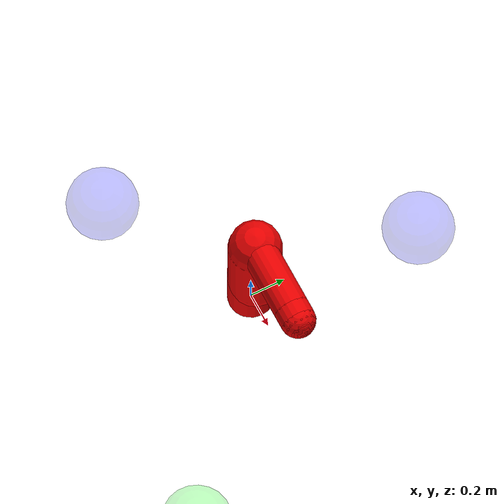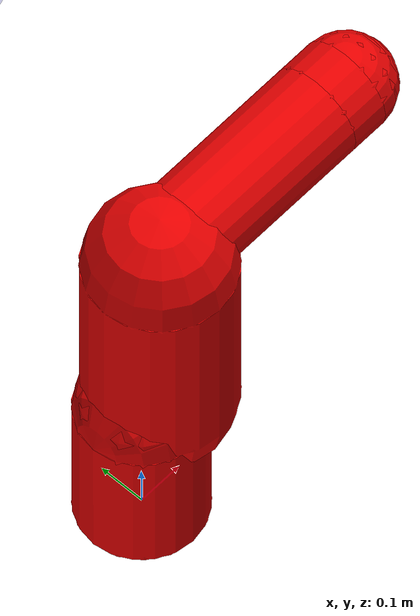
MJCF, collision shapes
<?xml version="1.0" encoding="utf-8"?>
<mujoco>
	<size njmax="3000" nconmax="1000"></size>
	<compiler meshdir="assets" autolimits="true"></compiler>
	<option gravity="0 0 0" timestep="0.002"></option>
	<default>
		<joint limited="false" damping="1000" range="-180 180"></joint>
		<geom condim="6" size="0.032" type="capsule" density="0.01"></geom>
		<motor ctrllimited="true" ctrlrange="-1.0 1.0" gear="2500"></motor>
		<site size="0.02" type="sphere" rgba="0 0 1 1"></site>
		<default class="lrmate">
			<material specular="0.5" shininess="0.25"></material>
			<joint axis="0 0 1"></joint>
			<general gaintype="fixed" biastype="affine" gainprm="2000" biasprm="0 -2000 -200"></general>
			<default class="visual">
				<geom type="mesh" contype="0" conaffinity="0" group="2"></geom>
			</default>
			<default class="collision">
				<geom group="3" material="color_fanuc_red"></geom>
			</default>
			<site size="0.001" rgba="1 0 0 1" group="4"></site>
		</default>
	</default>
	<asset>
		<material name="MatPlane" reflectance="0.1" shininess="0.1" specular="0.1" texrepeat="10 10" texture="texplane"></material>
		<material class="lrmate" name="color_fanuc_yellow" rgba="0.96 0.76 0.13 1.0"></material>
		<material class="lrmate" name="color_fanuc_white" rgba="0.86 0.85 0.81 1.0"></material>
		<material class="lrmate" name="color_fanuc_grey" rgba="0.34 0.35 0.36 0.5"></material>
		<material class="lrmate" name="color_fanuc_black" rgba="0.15 0.15 0.15 1.0"></material>
		<material class="lrmate" name="color_fanuc_red" rgba="0.9 0.0 0.0 0.2"></material>
		<mesh file="/home/yifan/guard/guard_new/safe_rl_envs/safe_rl_envs/xmls/fanuc_lr_mate/assets/link_0.stl"></mesh>
		<mesh file="/home/yifan/guard/guard_new/safe_rl_envs/safe_rl_envs/xmls/fanuc_lr_mate/assets/link_1.stl"></mesh>
		<mesh file="/home/yifan/guard/guard_new/safe_rl_envs/safe_rl_envs/xmls/fanuc_lr_mate/assets/link_2.stl"></mesh>
		<mesh file="/home/yifan/guard/guard_new/safe_rl_envs/safe_rl_envs/xmls/fanuc_lr_mate/assets/link_3.stl"></mesh>
		<mesh file="/home/yifan/guard/guard_new/safe_rl_envs/safe_rl_envs/xmls/fanuc_lr_mate/assets/link_4.stl"></mesh>
		<mesh file="/home/yifan/guard/guard_new/safe_rl_envs/safe_rl_envs/xmls/fanuc_lr_mate/assets/link_5.stl"></mesh>
		<mesh file="/home/yifan/guard/guard_new/safe_rl_envs/safe_rl_envs/xmls/fanuc_lr_mate/assets/link_6.stl"></mesh>
		<texture name="texplane" builtin="checker" height="100" width="100" rgb1="0.7 0.7 0.7" rgb2="0.8 0.8 0.8" type="2d"></texture>
		<texture type="skybox" builtin="gradient" rgb1="0.527 0.582 0.906" rgb2="0.1 0.1 0.35" width="800" height="800" markrgb="1 1 1" mark="random" random="0.001"></texture>
	</asset>
	<worldbody>
		<geom name="floor" size="3.5 3.5 0.1" type="plane" condim="6" rgba="1 1 1 1" material="MatPlane"></geom>
		<camera name="fixednear" pos="0 -2 2" zaxis="0 -1 1"></camera>
		<camera name="fixedfar" pos="0 -5 5" zaxis="0 -1 1"></camera>
		<body name="robot" pos="4.857521260602153e-10 -2.8323042920187505e-11 0.0" quat="1.0 0.0 0.0 0.0">
			<camera name="vision" pos="0 0 .5" xyaxes="0 -1 0 .4 0 1" fovy="90"></camera>
			<camera name="track" mode="track" pos="0.0 -2.0 2" xyaxes="1.0 -0.0 0 0.0 1.0 1"></camera>
			<site name="robot" pos="0 0 0" rgba="1 0 0 0"></site>
			<body name="link_1" pos="0.0 0.0 0.0">
				<geom class="collision" fromto="0.0 0.0 0.0 0.0 0.0 0.33" size="0.13" name="link_1"></geom>
				<geom class="visual" material="color_fanuc_black" mesh="link_0" name="link_1_visual"></geom>
				<site name="center_link_1" pos="0 0 0.165"></site>
				<body name="link_2" pos="0.0 0.0 0.330">
					<joint type="hinge" axis="0 0 1" name="joint_1"></joint>
					<geom class="collision" fromto="0.0 0.0 0.0 0.050 0.0 0.0" size="0.13" name="link_2"></geom>
					<geom class="visual" material="color_fanuc_yellow" mesh="link_1" name="link_2_visual"></geom>
					<site name="center_link_2" pos="0.025 0.0 0.0"></site>
					<body name="link_3" pos="0.050 0 0">
						<joint type="hinge" axis="0 1 0" name="joint_2"></joint>
						<geom class="collision" fromto="0.0 0.0 0.0 0 0 0.440" size="0.15" name="link_3"></geom>
						<geom class="visual" material="color_fanuc_yellow" mesh="link_2" name="link_3_visual"></geom>
						<site name="center_link_3" pos="0.0 0.0 0.220"></site>
						<body name="link_4" pos="0 0 0.440">
							<joint type="hinge" axis="0 -1 0" name="joint_3"></joint>
							<geom class="collision" fromto="0.0 0.0 0.0 0 0 0.035" size="0.1" name="link_4"></geom>
							<geom class="visual" material="color_fanuc_yellow" mesh="link_3" name="link_4_visual"></geom>
							<site name="center_link_4" pos="0.0 0.0 00175"></site>
							<body name="link_5" pos="0 0 0.035">
								<joint type="hinge" axis="-1 0 0" name="joint_4"></joint>
								<geom class="collision" fromto="0.0 0.0 0.0 0.420 0.0 0.0" size="0.1" name="link_5"></geom>
								<geom class="visual" material="color_fanuc_yellow" mesh="link_4" name="link_5_visual"></geom>
								<site name="center_link_5" pos="0.21 0.0 0.0"></site>
								<body name="link_6" pos="0.420 0 0">
									<joint type="hinge" axis="0 -1 0" name="joint_5"></joint>
									<geom class="collision" fromto="0.0 0.0 0.0 0.080 0 0" size="0.1" name="link_6"></geom>
									<geom class="visual" material="color_fanuc_yellow" mesh="link_5" name="link_6_visual"></geom>
									<site name="center_link_6" pos="0.04 0.0 0.0"></site>
									<body name="link_7" pos="0.080 0 0">
										<joint type="hinge" axis="-1 0 0" name="joint_6"></joint>
										<geom class="collision" pos="0.0 0.0 0.0" type="sphere" size="0.1" name="link_7"></geom>
										<geom class="visual" material="color_fanuc_black" mesh="link_6" name="link_7_visual"></geom>
										<site name="center_link_7" pos="0.0 0.0 0.0"></site>
									</body>
								</body>
							</body>
						</body>
					</body>
				</body>
			</body>
		</body>
		<body name="goal" pos="1.2780582201702666 -0.9958254602558928 0.6280613505767182" quat="-0.4982693776087498 0.0 0.0 0.8670222761483058">
			<geom name="goal" type="sphere" size="0.2" rgba="0.0 1.0 0.0 0.25" group="0" contype="0" conaffinity="0"></geom>
		</body>
		<body name="hazard3D0" pos="-0.6422157019872433 -0.5727822450461211 0.5561467167910048" quat="0.7704107303737541 0.0 0.0 0.6375478856721107">
			<geom name="hazard3D0" type="sphere" size="0.2" rgba="0.0 0.0 1.0 0.25" group="3" contype="0" conaffinity="0"></geom>
		</body>
		<body name="hazard3D1" pos="0.29198841333913883 0.8701727770226397 0.599401811836316" quat="-0.9679939595952471 0.0 0.0 0.2509734929969996">
			<geom name="hazard3D1" type="sphere" size="0.2" rgba="0.0 0.0 1.0 0.25" group="3" contype="0" conaffinity="0"></geom>
		</body>
		<light cutoff="100" diffuse="1 1 1" dir="0 0 -1" directional="true" exponent="1" pos="0 0 0.5" specular="0 0 0" castshadow="false"></light>
	</worldbody>
	<sensor>
		<touch site="center_link_7" name="touch_end_effector"></touch>
		<jointpos joint="joint_1" name="jointpos_joint_1"></jointpos>
		<jointpos joint="joint_2" name="jointpos_joint_2"></jointpos>
		<jointpos joint="joint_3" name="jointpos_joint_3"></jointpos>
		<jointpos joint="joint_4" name="jointpos_joint_4"></jointpos>
		<jointpos joint="joint_5" name="jointpos_joint_5"></jointpos>
		<jointpos joint="joint_6" name="jointpos_joint_6"></jointpos>
		<jointvel joint="joint_1" name="jointvel_joint_1"></jointvel>
		<jointvel joint="joint_2" name="jointvel_joint_2"></jointvel>
		<jointvel joint="joint_3" name="jointvel_joint_3"></jointvel>
		<jointvel joint="joint_4" name="jointvel_joint_4"></jointvel>
		<jointvel joint="joint_5" name="jointvel_joint_5"></jointvel>
		<jointvel joint="joint_6" name="jointvel_joint_6"></jointvel>
		<accelerometer site="center_link_1" name="accelerometer_link_1"></accelerometer>
		<accelerometer site="center_link_2" name="accelerometer_link_2"></accelerometer>
		<accelerometer site="center_link_3" name="accelerometer_link_3"></accelerometer>
		<accelerometer site="center_link_4" name="accelerometer_link_4"></accelerometer>
		<accelerometer site="center_link_5" name="accelerometer_link_5"></accelerometer>
		<accelerometer site="center_link_6" name="accelerometer_link_6"></accelerometer>
		<accelerometer site="center_link_7" name="accelerometer_link_7"></accelerometer>
		<velocimeter site="center_link_1" name="velocimeter_link_1"></velocimeter>
		<velocimeter site="center_link_2" name="velocimeter_link_2"></velocimeter>
		<velocimeter site="center_link_3" name="velocimeter_link_3"></velocimeter>
		<velocimeter site="center_link_4" name="velocimeter_link_4"></velocimeter>
		<velocimeter site="center_link_5" name="velocimeter_link_5"></velocimeter>
		<velocimeter site="center_link_6" name="velocimeter_link_6"></velocimeter>
		<velocimeter site="center_link_7" name="velocimeter_link_7"></velocimeter>
		<gyro site="center_link_1" name="gyro_link_1"></gyro>
		<gyro site="center_link_2" name="gyro_link_2"></gyro>
		<gyro site="center_link_3" name="gyro_link_3"></gyro>
		<gyro site="center_link_4" name="gyro_link_4"></gyro>
		<gyro site="center_link_5" name="gyro_link_5"></gyro>
		<gyro site="center_link_6" name="gyro_link_6"></gyro>
		<gyro site="center_link_7" name="gyro_link_7"></gyro>
		<magnetometer site="center_link_1" name="magnetometer_link_1"></magnetometer>
		<magnetometer site="center_link_2" name="magnetometer_link_2"></magnetometer>
		<magnetometer site="center_link_3" name="magnetometer_link_3"></magnetometer>
		<magnetometer site="center_link_4" name="magnetometer_link_4"></magnetometer>
		<magnetometer site="center_link_5" name="magnetometer_link_5"></magnetometer>
		<magnetometer site="center_link_6" name="magnetometer_link_6"></magnetometer>
		<magnetometer site="center_link_7" name="magnetometer_link_7"></magnetometer>
		<subtreecom body="robot" name="subtreecom"></subtreecom>
		<subtreelinvel body="robot" name="subtreelinvel"></subtreelinvel>
		<subtreeangmom body="robot" name="subtreeangmom"></subtreeangmom>
	</sensor>
	<actuator>
		<motor name="joint_1" joint="joint_1"></motor>
		<motor name="joint_2" joint="joint_2"></motor>
		<motor name="joint_3" joint="joint_3"></motor>
		<motor name="joint_4" joint="joint_4"></motor>
		<motor name="joint_5" joint="joint_5"></motor>
		<motor name="joint_6" joint="joint_6"></motor>
	</actuator>
	<equality>
	</equality>
</mujoco>
